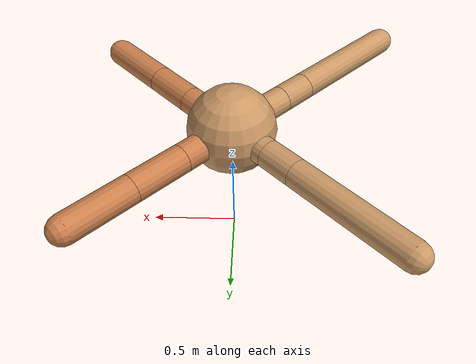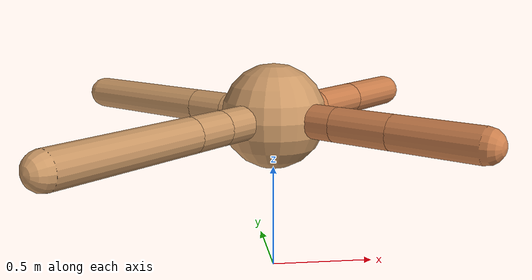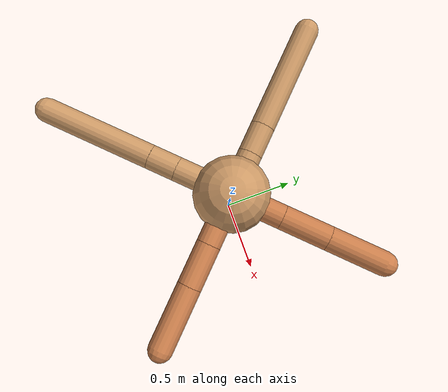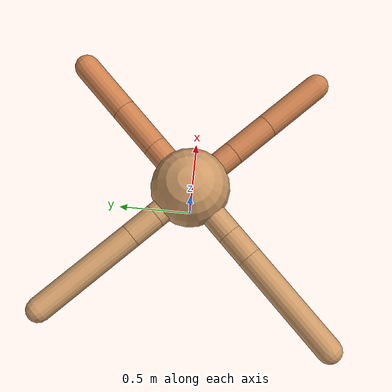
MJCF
<mujoco model="ant">
  <compiler angle="degree" coordinate="local" inertiafromgeom="true" />
  <option integrator="RK4" timestep="0.01" />
  <custom>
    <numeric data="0.0 0.0 0.55 1.0 0.0 0.0 0.0 0.0 1.0 0.0 -1.0 0.0 -1.0 0.0 1.0" name="init_qpos" />
  </custom>
  <default>
    <joint armature="1" damping="1" limited="true" />
    <geom conaffinity="0" condim="3" density="5.0" friction="1.5 0.1 0.1" margin="0.01" rgba="0.8 0.6 0.4 1" />
  </default>
  <worldbody>
    <body name="torso" pos="0 0 0.75">
      <geom name="torso_geom" pos="0 0 0" size="0.25" type="sphere" />

      <body name="front_left_leg" pos="0 0 0">
        <geom fromto="0.0 0.0 0.0 0.2482120601146074 0.2482120601146074 0.0" name="aux_1_geom" size="0.08" type="capsule" rgba=".8 .5 .3 1" />
        <body name="aux_1" pos="0.2482120601146074 0.2482120601146074 0.0">
          <joint axis="0 0 1" name="hip_1" pos="0.0 0.0 0.0" range="-40 40" type="hinge" />
          <geom fromto="0.0 0.0 0.0 0.22215654502168736 0.22215654502168736 0.0" name="left_leg_geom" size="0.08" type="capsule" rgba=".8 .5 .3 1" />
          <body pos="0.22215654502168736 0.22215654502168736 0.0" name="front_left_foot">
            <joint axis="-1 1 0" name="ankle_1" pos="0.0 0.0 0.0" range="30 100" type="hinge" />
            <geom fromto="0.0 0.0 0.0 0.26788555911835416 0.26788555911835416 0.0" name="left_ankle_geom" size="0.08" type="capsule" rgba=".8 .5 .3 1" />
          </body>
        </body>
      </body>
      <body name="front_right_leg" pos="0 0 0">
        <geom fromto="0.0 0.0 0.0 -0.2001514491727021 0.2001514491727021 0.0" name="aux_2_geom" size="0.08" type="capsule" />
        <body name="aux_2" pos="-0.2001514491727021 0.2001514491727021 0.0">
          <joint axis="0 0 1" name="hip_2" pos="0.0 0.0 0.0" range="-40 40" type="hinge" />
          <geom fromto="0.0 0.0 0.0 -0.13946233882859768 0.13946233882859768 0.0" name="right_leg_geom" size="0.08" type="capsule" />
          <body pos="-0.13946233882859768 0.13946233882859768 0.0" name="front_right_foot">
            <joint axis="1 1 0" name="ankle_2" pos="0.0 0.0 0.0" range="-100 -30" type="hinge" />
            <geom fromto="0.0 0.0 0.0 -0.5066736895977333 0.5066736895977333 0.0" name="right_ankle_geom" size="0.08" type="capsule" />
          </body>
        </body>
      </body>
      <body name="left_back_leg" pos="0 0 0">
        <geom fromto="0.0 0.0 0.0 -0.27110686569818504 -0.27110686569818504 0.0" name="aux_3_geom" size="0.08" type="capsule" />
        <body name="aux_3" pos="-0.27110686569818504 -0.27110686569818504 0.0">
          <joint axis="0 0 1" name="hip_3" pos="0.0 0.0 0.0" range="-40 40" type="hinge" />
          <geom fromto="0.0 0.0 0.0 -0.13286057856006636 -0.13286057856006636 0.0" name="back_leg_geom" size="0.08" type="capsule" />
          <body pos="-0.13286057856006636 -0.13286057856006636 0.0" name="left_back_foot">
            <joint axis="-1 1 0" name="ankle_3" pos="0.0 0.0 0.0" range="-100 -30" type="hinge" />
            <geom fromto="0.0 0.0 0.0 -0.523862931459325 -0.523862931459325 0.0" name="third_ankle_geom" size="0.08" type="capsule" />
          </body>
        </body>
      </body>
      <body name="right_back_leg" pos="0 0 0">
        <geom fromto="0.0 0.0 0.0 0.2482583156765631 -0.2482583156765631 0.0" name="aux_4_geom" size="0.08" type="capsule" rgba=".8 .5 .3 1" />
        <body name="aux_4" pos="0.2482583156765631 -0.2482583156765631 0.0">
          <joint axis="0 0 1" name="hip_4" pos="0.0 0.0 0.0" range="-40 40" type="hinge" />
          <geom fromto="0.0 0.0 0.0 0.20001744048856218 -0.20001744048856218 0.0" name="rightback_leg_geom" size="0.08" type="capsule" rgba=".8 .5 .3 1" />
          <body pos="0.20001744048856218 -0.20001744048856218 0.0" name="right_back_foot">
            <joint axis="1 1 0" name="ankle_4" pos="0.0 0.0 0.0" range="30 100" type="hinge" />
            <geom fromto="0.0 0.0 0.0 0.29452995752788863 -0.29452995752788863 0.0" name="fourth_ankle_geom" size="0.08" type="capsule" rgba=".8 .5 .3 1" />
          </body>
        </body>
      </body>
    </body>
  </worldbody>
  <actuator>
    <motor ctrllimited="true" ctrlrange="-1.0 1.0" joint="hip_4" gear="150" />
    <motor ctrllimited="true" ctrlrange="-1.0 1.0" joint="ankle_4" gear="150" />
    <motor ctrllimited="true" ctrlrange="-1.0 1.0" joint="hip_1" gear="150" />
    <motor ctrllimited="true" ctrlrange="-1.0 1.0" joint="ankle_1" gear="150" />
    <motor ctrllimited="true" ctrlrange="-1.0 1.0" joint="hip_2" gear="150" />
    <motor ctrllimited="true" ctrlrange="-1.0 1.0" joint="ankle_2" gear="150" />
    <motor ctrllimited="true" ctrlrange="-1.0 1.0" joint="hip_3" gear="150" />
    <motor ctrllimited="true" ctrlrange="-1.0 1.0" joint="ankle_3" gear="150" />
  </actuator>
</mujoco>
